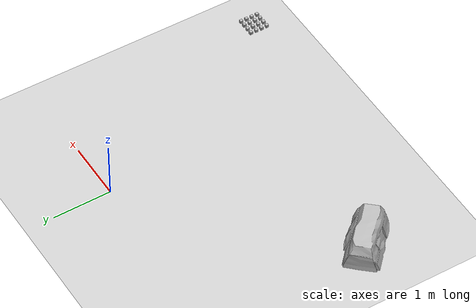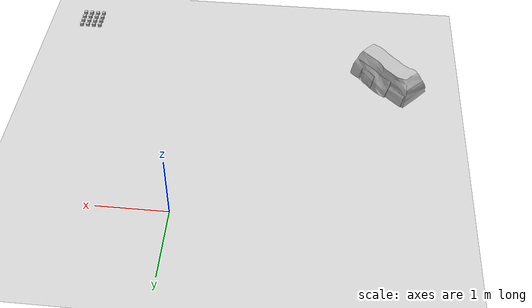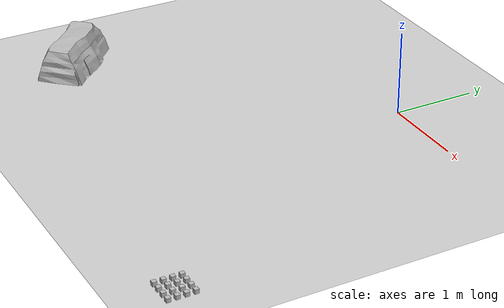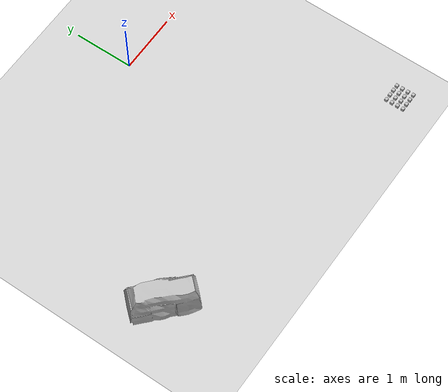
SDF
<sdf version="1.6">
 <world name="default">
  <model name="ground_plane">
   <static>1</static>
   <link name="link">
    <collision name="collision">
     <geometry><plane><normal>0 0 1</normal><size>100 100</size></plane></geometry>
     <surface><friction><ode><mu>100</mu><mu2>50</mu2></ode></friction></surface>
    </collision>
    <visual name="visual">
     <cast_shadows>0</cast_shadows>
     <geometry><plane><normal>0 0 1</normal><size>100 100</size></plane></geometry>
     <material>
      <script><uri>file://media/materials/scripts/gazebo.material</uri><name>Gazebo/Grey</name></script>
     </material>
    </visual>
   </link>
  </model>
  <model name="at48">
   <static>0</static>
   <link name="link">
    <inertial>
     <mass>0.01</mass>
     <inertia><ixx>4e-05</ixx><ixy>0</ixy><ixz>0</ixz><iyy>4e-05</iyy><iyz>0</iyz><izz>4e-05</izz></inertia>
    </inertial>
    <visual name="visual">
     <geometry><box><size>0.05 0.05 0.05</size></box></geometry>
     <material>
      <script>
       <uri>model://at0/materials/scripts</uri>
       <uri>model://at0/materials/textures</uri>
       <name>at0/Diffuse</name>
      </script>
     </material>
    </visual>
    <collision name="collision">
     <geometry><box><size>0.05 0.05 0.05</size></box></geometry>
     <surface><friction><ode><mu>0.8</mu><mu2>0.7</mu2></ode></friction></surface>
    </collision>
   </link>
   <pose>1.77506 -3.94063 0.025 0 -0 0</pose>
  </model>
  <model name="at49">
   <static>0</static>
   <link name="link">
    <inertial>
     <mass>0.01</mass>
     <inertia><ixx>4e-05</ixx><ixy>0</ixy><ixz>0</ixz><iyy>4e-05</iyy><iyz>0</iyz><izz>4e-05</izz></inertia>
    </inertial>
    <visual name="visual">
     <geometry><box><size>0.05 0.05 0.05</size></box></geometry>
     <material>
      <script>
       <uri>model://at0/materials/scripts</uri>
       <uri>model://at0/materials/textures</uri>
       <name>at0/Diffuse</name>
      </script>
     </material>
    </visual>
    <collision name="collision">
     <geometry><box><size>0.05 0.05 0.05</size></box></geometry>
     <surface><friction><ode><mu>0.8</mu><mu2>0.7</mu2></ode></friction></surface>
    </collision>
   </link>
   <pose>1.87506 -3.94063 0.025 0 -0 0</pose>
  </model>
  <model name="at50">
   <static>0</static>
   <link name="link">
    <inertial>
     <mass>0.01</mass>
     <inertia><ixx>4e-05</ixx><ixy>0</ixy><ixz>0</ixz><iyy>4e-05</iyy><iyz>0</iyz><izz>4e-05</izz></inertia>
    </inertial>
    <visual name="visual">
     <geometry><box><size>0.05 0.05 0.05</size></box></geometry>
     <material>
      <script>
       <uri>model://at0/materials/scripts</uri>
       <uri>model://at0/materials/textures</uri>
       <name>at0/Diffuse</name>
      </script>
     </material>
    </visual>
    <collision name="collision">
     <geometry><box><size>0.05 0.05 0.05</size></box></geometry>
     <surface><friction><ode><mu>0.8</mu><mu2>0.7</mu2></ode></friction></surface>
    </collision>
   </link>
   <pose>1.97506 -3.94063 0.025 0 -0 0</pose>
  </model>
  <model name="at51">
   <static>0</static>
   <link name="link">
    <inertial>
     <mass>0.01</mass>
     <inertia><ixx>4e-05</ixx><ixy>0</ixy><ixz>0</ixz><iyy>4e-05</iyy><iyz>0</iyz><izz>4e-05</izz></inertia>
    </inertial>
    <visual name="visual">
     <geometry><box><size>0.05 0.05 0.05</size></box></geometry>
     <material>
      <script>
       <uri>model://at0/materials/scripts</uri>
       <uri>model://at0/materials/textures</uri>
       <name>at0/Diffuse</name>
      </script>
     </material>
    </visual>
    <collision name="collision">
     <geometry><box><size>0.05 0.05 0.05</size></box></geometry>
     <surface><friction><ode><mu>0.8</mu><mu2>0.7</mu2></ode></friction></surface>
    </collision>
   </link>
   <pose>2.07506 -3.94063 0.025 0 -0 0</pose>
  </model>
  <model name="at52">
   <static>0</static>
   <link name="link">
    <inertial>
     <mass>0.01</mass>
     <inertia><ixx>4e-05</ixx><ixy>0</ixy><ixz>0</ixz><iyy>4e-05</iyy><iyz>0</iyz><izz>4e-05</izz></inertia>
    </inertial>
    <visual name="visual">
     <geometry><box><size>0.05 0.05 0.05</size></box></geometry>
     <material>
      <script>
       <uri>model://at0/materials/scripts</uri>
       <uri>model://at0/materials/textures</uri>
       <name>at0/Diffuse</name>
      </script>
     </material>
    </visual>
    <collision name="collision">
     <geometry><box><size>0.05 0.05 0.05</size></box></geometry>
     <surface><friction><ode><mu>0.8</mu><mu2>0.7</mu2></ode></friction></surface>
    </collision>
   </link>
   <pose>1.77506 -3.84063 0.025 0 -0 0</pose>
  </model>
  <model name="at53">
   <static>0</static>
   <link name="link">
    <inertial>
     <mass>0.01</mass>
     <inertia><ixx>4e-05</ixx><ixy>0</ixy><ixz>0</ixz><iyy>4e-05</iyy><iyz>0</iyz><izz>4e-05</izz></inertia>
    </inertial>
    <visual name="visual">
     <geometry><box><size>0.05 0.05 0.05</size></box></geometry>
     <material>
      <script>
       <uri>model://at0/materials/scripts</uri>
       <uri>model://at0/materials/textures</uri>
       <name>at0/Diffuse</name>
      </script>
     </material>
    </visual>
    <collision name="collision">
     <geometry><box><size>0.05 0.05 0.05</size></box></geometry>
     <surface><friction><ode><mu>0.8</mu><mu2>0.7</mu2></ode></friction></surface>
    </collision>
   </link>
   <pose>1.87506 -3.84063 0.025 0 -0 0</pose>
  </model>
  <model name="at54">
   <static>0</static>
   <link name="link">
    <inertial>
     <mass>0.01</mass>
     <inertia><ixx>4e-05</ixx><ixy>0</ixy><ixz>0</ixz><iyy>4e-05</iyy><iyz>0</iyz><izz>4e-05</izz></inertia>
    </inertial>
    <visual name="visual">
     <geometry><box><size>0.05 0.05 0.05</size></box></geometry>
     <material>
      <script>
       <uri>model://at0/materials/scripts</uri>
       <uri>model://at0/materials/textures</uri>
       <name>at0/Diffuse</name>
      </script>
     </material>
    </visual>
    <collision name="collision">
     <geometry><box><size>0.05 0.05 0.05</size></box></geometry>
     <surface><friction><ode><mu>0.8</mu><mu2>0.7</mu2></ode></friction></surface>
    </collision>
   </link>
   <pose>1.97506 -3.84063 0.025 0 -0 0</pose>
  </model>
  <model name="at55">
   <static>0</static>
   <link name="link">
    <inertial>
     <mass>0.01</mass>
     <inertia><ixx>4e-05</ixx><ixy>0</ixy><ixz>0</ixz><iyy>4e-05</iyy><iyz>0</iyz><izz>4e-05</izz></inertia>
    </inertial>
    <visual name="visual">
     <geometry><box><size>0.05 0.05 0.05</size></box></geometry>
     <material>
      <script>
       <uri>model://at0/materials/scripts</uri>
       <uri>model://at0/materials/textures</uri>
       <name>at0/Diffuse</name>
      </script>
     </material>
    </visual>
    <collision name="collision">
     <geometry><box><size>0.05 0.05 0.05</size></box></geometry>
     <surface><friction><ode><mu>0.8</mu><mu2>0.7</mu2></ode></friction></surface>
    </collision>
   </link>
   <pose>2.07506 -3.84063 0.025 0 -0 0</pose>
  </model>
  <model name="at56">
   <static>0</static>
   <link name="link">
    <inertial>
     <mass>0.01</mass>
     <inertia><ixx>4e-05</ixx><ixy>0</ixy><ixz>0</ixz><iyy>4e-05</iyy><iyz>0</iyz><izz>4e-05</izz></inertia>
    </inertial>
    <visual name="visual">
     <geometry><box><size>0.05 0.05 0.05</size></box></geometry>
     <material>
      <script>
       <uri>model://at0/materials/scripts</uri>
       <uri>model://at0/materials/textures</uri>
       <name>at0/Diffuse</name>
      </script>
     </material>
    </visual>
    <collision name="collision">
     <geometry><box><size>0.05 0.05 0.05</size></box></geometry>
     <surface><friction><ode><mu>0.8</mu><mu2>0.7</mu2></ode></friction></surface>
    </collision>
   </link>
   <pose>1.77506 -3.74063 0.025 0 -0 0</pose>
  </model>
  <model name="at57">
   <static>0</static>
   <link name="link">
    <inertial>
     <mass>0.01</mass>
     <inertia><ixx>4e-05</ixx><ixy>0</ixy><ixz>0</ixz><iyy>4e-05</iyy><iyz>0</iyz><izz>4e-05</izz></inertia>
    </inertial>
    <visual name="visual">
     <geometry><box><size>0.05 0.05 0.05</size></box></geometry>
     <material>
      <script>
       <uri>model://at0/materials/scripts</uri>
       <uri>model://at0/materials/textures</uri>
       <name>at0/Diffuse</name>
      </script>
     </material>
    </visual>
    <collision name="collision">
     <geometry><box><size>0.05 0.05 0.05</size></box></geometry>
     <surface><friction><ode><mu>0.8</mu><mu2>0.7</mu2></ode></friction></surface>
    </collision>
   </link>
   <pose>1.87506 -3.74063 0.025 0 -0 0</pose>
  </model>
  <model name="at58">
   <static>0</static>
   <link name="link">
    <inertial>
     <mass>0.01</mass>
     <inertia><ixx>4e-05</ixx><ixy>0</ixy><ixz>0</ixz><iyy>4e-05</iyy><iyz>0</iyz><izz>4e-05</izz></inertia>
    </inertial>
    <visual name="visual">
     <geometry><box><size>0.05 0.05 0.05</size></box></geometry>
     <material>
      <script>
       <uri>model://at0/materials/scripts</uri>
       <uri>model://at0/materials/textures</uri>
       <name>at0/Diffuse</name>
      </script>
     </material>
    </visual>
    <collision name="collision">
     <geometry><box><size>0.05 0.05 0.05</size></box></geometry>
     <surface><friction><ode><mu>0.8</mu><mu2>0.7</mu2></ode></friction></surface>
    </collision>
   </link>
   <pose>1.97506 -3.74063 0.025 0 -0 0</pose>
  </model>
  <model name="at59">
   <static>0</static>
   <link name="link">
    <inertial>
     <mass>0.01</mass>
     <inertia><ixx>4e-05</ixx><ixy>0</ixy><ixz>0</ixz><iyy>4e-05</iyy><iyz>0</iyz><izz>4e-05</izz></inertia>
    </inertial>
    <visual name="visual">
     <geometry><box><size>0.05 0.05 0.05</size></box></geometry>
     <material>
      <script>
       <uri>model://at0/materials/scripts</uri>
       <uri>model://at0/materials/textures</uri>
       <name>at0/Diffuse</name>
      </script>
     </material>
    </visual>
    <collision name="collision">
     <geometry><box><size>0.05 0.05 0.05</size></box></geometry>
     <surface><friction><ode><mu>0.8</mu><mu2>0.7</mu2></ode></friction></surface>
    </collision>
   </link>
   <pose>2.07506 -3.74063 0.025 0 -0 0</pose>
  </model>
  <model name="at60">
   <static>0</static>
   <link name="link">
    <inertial>
     <mass>0.01</mass>
     <inertia><ixx>4e-05</ixx><ixy>0</ixy><ixz>0</ixz><iyy>4e-05</iyy><iyz>0</iyz><izz>4e-05</izz></inertia>
    </inertial>
    <visual name="visual">
     <geometry><box><size>0.05 0.05 0.05</size></box></geometry>
     <material>
      <script>
       <uri>model://at0/materials/scripts</uri>
       <uri>model://at0/materials/textures</uri>
       <name>at0/Diffuse</name>
      </script>
     </material>
    </visual>
    <collision name="collision">
     <geometry><box><size>0.05 0.05 0.05</size></box></geometry>
     <surface><friction><ode><mu>0.8</mu><mu2>0.7</mu2></ode></friction></surface>
    </collision>
   </link>
   <pose>1.77506 -3.64063 0.025 0 -0 0</pose>
  </model>
  <model name="at61">
   <static>0</static>
   <link name="link">
    <inertial>
     <mass>0.01</mass>
     <inertia><ixx>4e-05</ixx><ixy>0</ixy><ixz>0</ixz><iyy>4e-05</iyy><iyz>0</iyz><izz>4e-05</izz></inertia>
    </inertial>
    <visual name="visual">
     <geometry><box><size>0.05 0.05 0.05</size></box></geometry>
     <material>
      <script>
       <uri>model://at0/materials/scripts</uri>
       <uri>model://at0/materials/textures</uri>
       <name>at0/Diffuse</name>
      </script>
     </material>
    </visual>
    <collision name="collision">
     <geometry><box><size>0.05 0.05 0.05</size></box></geometry>
     <surface><friction><ode><mu>0.8</mu><mu2>0.7</mu2></ode></friction></surface>
    </collision>
   </link>
   <pose>1.87506 -3.64063 0.025 0 -0 0</pose>
  </model>
  <model name="at62">
   <static>0</static>
   <link name="link">
    <inertial>
     <mass>0.01</mass>
     <inertia><ixx>4e-05</ixx><ixy>0</ixy><ixz>0</ixz><iyy>4e-05</iyy><iyz>0</iyz><izz>4e-05</izz></inertia>
    </inertial>
    <visual name="visual">
     <geometry><box><size>0.05 0.05 0.05</size></box></geometry>
     <material>
      <script>
       <uri>model://at0/materials/scripts</uri>
       <uri>model://at0/materials/textures</uri>
       <name>at0/Diffuse</name>
      </script>
     </material>
    </visual>
    <collision name="collision">
     <geometry><box><size>0.05 0.05 0.05</size></box></geometry>
     <surface><friction><ode><mu>0.8</mu><mu2>0.7</mu2></ode></friction></surface>
    </collision>
   </link>
   <pose>1.97506 -3.64063 0.025 0 -0 0</pose>
  </model>
  <model name="at63">
   <static>0</static>
   <link name="link">
    <inertial>
     <mass>0.01</mass>
     <inertia><ixx>4e-05</ixx><ixy>0</ixy><ixz>0</ixz><iyy>4e-05</iyy><iyz>0</iyz><izz>4e-05</izz></inertia>
    </inertial>
    <visual name="visual">
     <geometry><box><size>0.05 0.05 0.05</size></box></geometry>
     <material>
      <script>
       <uri>model://at0/materials/scripts</uri>
       <uri>model://at0/materials/textures</uri>
       <name>at0/Diffuse</name>
      </script>
     </material>
    </visual>
    <collision name="collision">
     <geometry><box><size>0.05 0.05 0.05</size></box></geometry>
     <surface><friction><ode><mu>0.8</mu><mu2>0.7</mu2></ode></friction></surface>
    </collision>
   </link>
   <pose>2.07506 -3.64063 0.025 0 -0 0</pose>
  </model>
  <model name="rock_barrier_0">
   <static>1</static>
   <link name="link">
    <inertial>
     <mass>1</mass>
     <inertia>
      <ixx>0.166667</ixx>
      <ixy>0</ixy>
      <ixz>0</ixz>
      <iyy>0.166667</iyy>
      <iyz>0</iyz>
      <izz>0.166667</izz>
     </inertia>
    </inertial>
    <visual name="visual">
     <geometry><mesh><uri>model://rock_barrier/rock_barrier.stl</uri><scale>1 1 1</scale></mesh></geometry>
     <material>
      <lighting>1</lighting>
      <script><uri>model://rock_barrier</uri><name>rock_barrier/Diffuse</name></script>
     </material>
    </visual>
    <collision name="collision">
     <geometry><mesh><uri>model://rock_barrier/rock_barrier.stl</uri><scale>1 1 1</scale></mesh></geometry>
     <surface>
      <friction>
       <ode><mu>1</mu><mu2>1</mu2><fdir1>0 0 0</fdir1><slip1>0</slip1><slip2>0</slip2></ode>
       <torsional>
        <coefficient>1</coefficient>
        <patch_radius>0</patch_radius>
        <surface_radius>0</surface_radius>
        <use_patch_radius>1</use_patch_radius>
        <ode><slip>0</slip></ode>
       </torsional>
      </friction>
      <bounce><restitution_coefficient>0</restitution_coefficient><threshold>1e+06</threshold></bounce>
      <contact>
       <collide_without_contact>0</collide_without_contact>
       <collide_without_contact_bitmask>1</collide_without_contact_bitmask>
       <collide_bitmask>1</collide_bitmask>
       <ode>
        <soft_cfm>0</soft_cfm>
        <soft_erp>0.2</soft_erp>
        <kp>1e+13</kp>
        <kd>1</kd>
        <max_vel>0.01</max_vel>
        <min_depth>0</min_depth>
       </ode>
      </contact>
     </surface>
    </collision>
   </link>
   <pose>-2.91952 -2.79384 0 0 -0 0.822452</pose>
  </model>
 </world>
</sdf>
